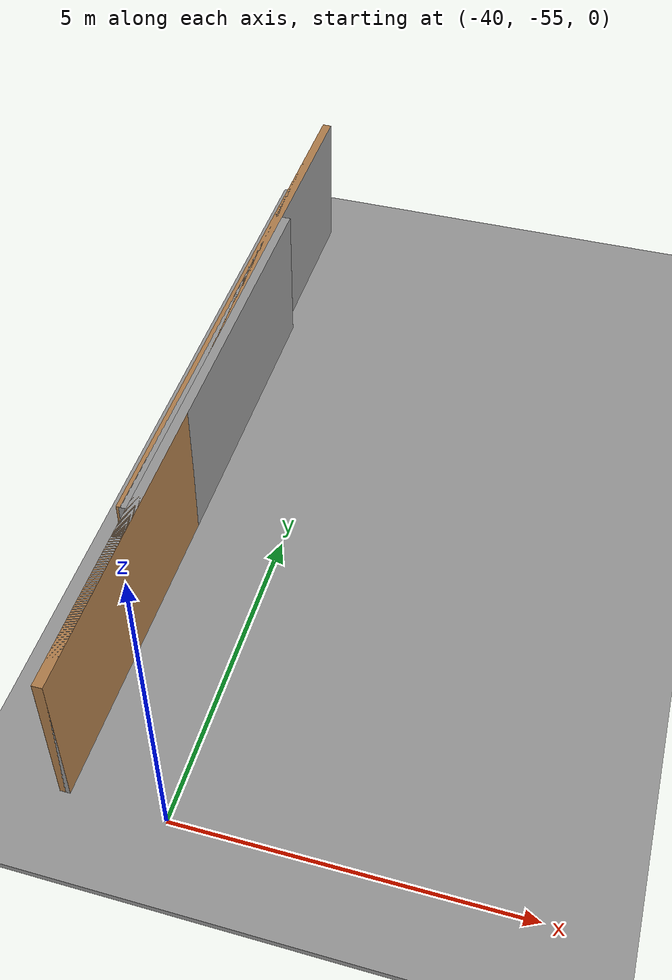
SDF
<sdf version="1.6">
 <world name="default">
  <model name="ground_plane">
   <static>1</static>
   <link name="link">
    <collision name="collision">
     <geometry><plane><normal>0 0 1</normal><size>100 100</size></plane></geometry>
     <surface><friction><ode><mu>100</mu><mu2>50</mu2></ode></friction></surface>
    </collision>
    <visual name="visual">
     <cast_shadows>0</cast_shadows>
     <geometry><plane><normal>0 0 1</normal><size>100 100</size></plane></geometry>
     <material>
      <script><uri>file://media/materials/scripts/gazebo.material</uri><name>Gazebo/Grey</name></script>
     </material>
    </visual>
   </link>
  </model>
  <model name="ground_plane_6">
   <static>1</static>
   <link name="link">
    <collision name="collision">
     <geometry><plane><normal>0 0 1</normal><size>100 100</size></plane></geometry>
     <surface><friction><ode><mu>100</mu><mu2>50</mu2></ode></friction></surface>
    </collision>
    <visual name="visual">
     <cast_shadows>0</cast_shadows>
     <geometry><plane><normal>0 0 1</normal><size>100 100</size></plane></geometry>
     <material>
      <script><uri>file://media/materials/scripts/gazebo.material</uri><name>Gazebo/Grey</name></script>
     </material>
    </visual>
   </link>
   <pose>-52 -46 0 0 -0 0</pose>
  </model>
  <model name="wall-10m-amodi_4">
   <pose>-41.5977 -47 0 0 -0 0</pose>
   <link name="Wall_24">
    <collision name="Wall_24_Collision">
     <geometry><box><size>10 0.15 2.5</size></box></geometry>
     <pose>0 0 1.25 0 -0 0</pose>
    </collision>
    <visual name="Wall_24_Visual">
     <pose>0 0 1.25 0 -0 0</pose>
     <geometry><box><size>10 0.15 2.5</size></box></geometry>
     <material>
      <script><uri>file://media/materials/scripts/gazebo.material</uri><name>Gazebo/Grey</name></script>
      <ambient>1 1 1 1</ambient>
     </material>
    </visual>
    <pose>0 -0 0 0 0 -1.5708</pose>
   </link>
   <link name="Wall_25">
    <collision name="Wall_25_Collision">
     <geometry><box><size>10 0.15 2.5</size></box></geometry>
     <pose>0 0 1.25 0 -0 0</pose>
    </collision>
    <visual name="Wall_25_Visual">
     <pose>0 0 1.25 0 -0 0</pose>
     <geometry><box><size>10 0.15 2.5</size></box></geometry>
     <material>
      <script><uri>file://media/materials/scripts/gazebo.material</uri><name>Gazebo/Wood</name></script>
      <ambient>1 1 1 1</ambient>
     </material>
    </visual>
    <pose>0 -0 0 0 -0 1.5708</pose>
   </link>
   <static>1</static>
  </model>
  <model name="wall-10m-amodi_5">
   <pose>-41.452 -50 0 0 -0 0</pose>
   <link name="Wall_24">
    <collision name="Wall_24_Collision">
     <geometry><box><size>10 0.15 2.5</size></box></geometry>
     <pose>0 0 1.25 0 -0 0</pose>
    </collision>
    <visual name="Wall_24_Visual">
     <pose>0 0 1.25 0 -0 0</pose>
     <geometry><box><size>10 0.15 2.5</size></box></geometry>
     <material>
      <script><uri>file://media/materials/scripts/gazebo.material</uri><name>Gazebo/Grey</name></script>
      <ambient>1 1 1 1</ambient>
     </material>
    </visual>
    <pose>0 -0 0 0 0 -1.5708</pose>
   </link>
   <link name="Wall_25">
    <collision name="Wall_25_Collision">
     <geometry><box><size>10 0.15 2.5</size></box></geometry>
     <pose>0 0 1.25 0 -0 0</pose>
    </collision>
    <visual name="Wall_25_Visual">
     <pose>0 0 1.25 0 -0 0</pose>
     <geometry><box><size>10 0.15 2.5</size></box></geometry>
     <material>
      <script><uri>file://media/materials/scripts/gazebo.material</uri><name>Gazebo/Wood</name></script>
      <ambient>1 1 1 1</ambient>
     </material>
    </visual>
    <pose>0 -0 0 0 -0 1.5708</pose>
   </link>
   <static>1</static>
  </model>
 </world>
</sdf>
